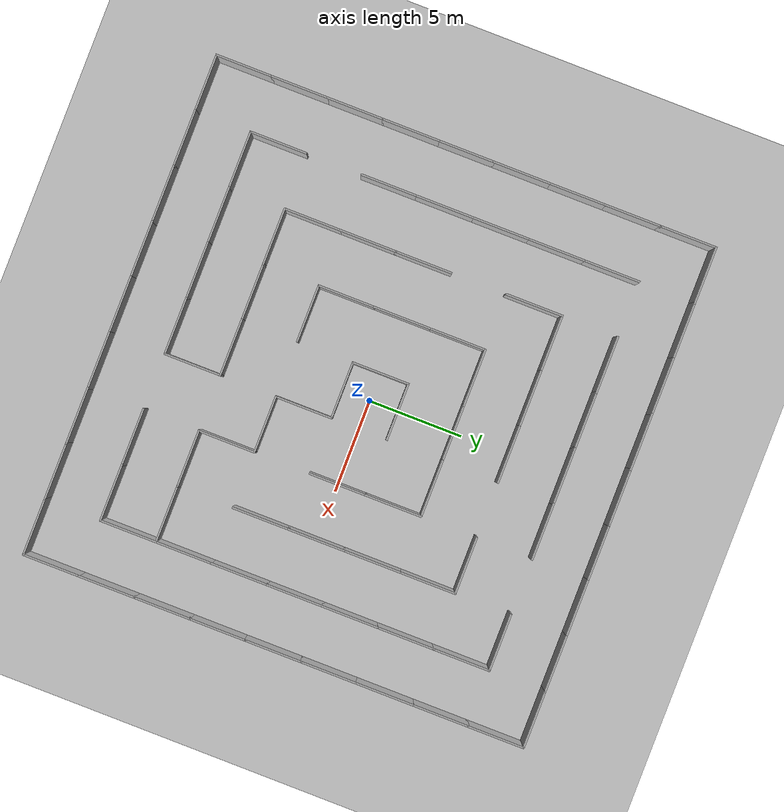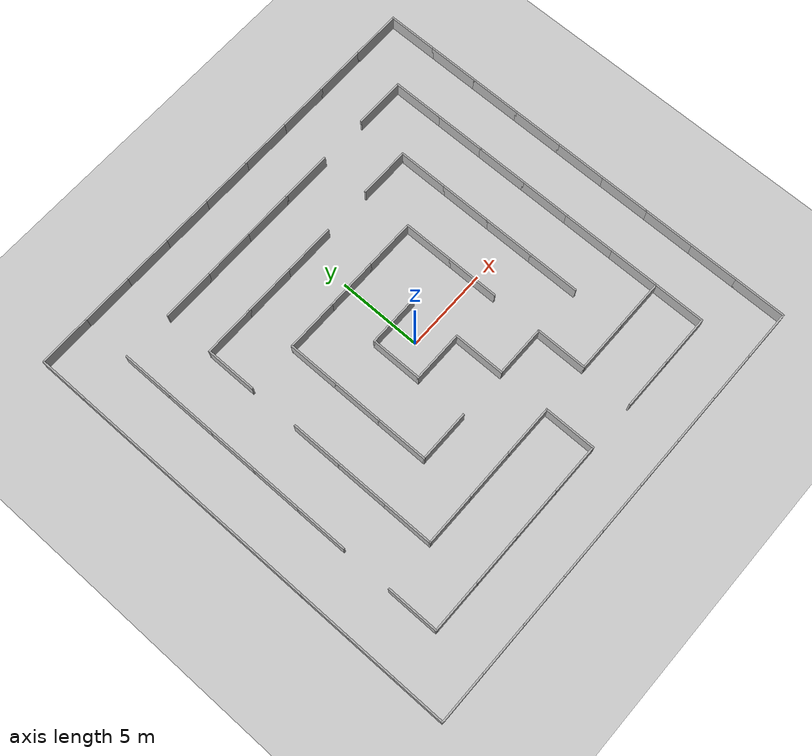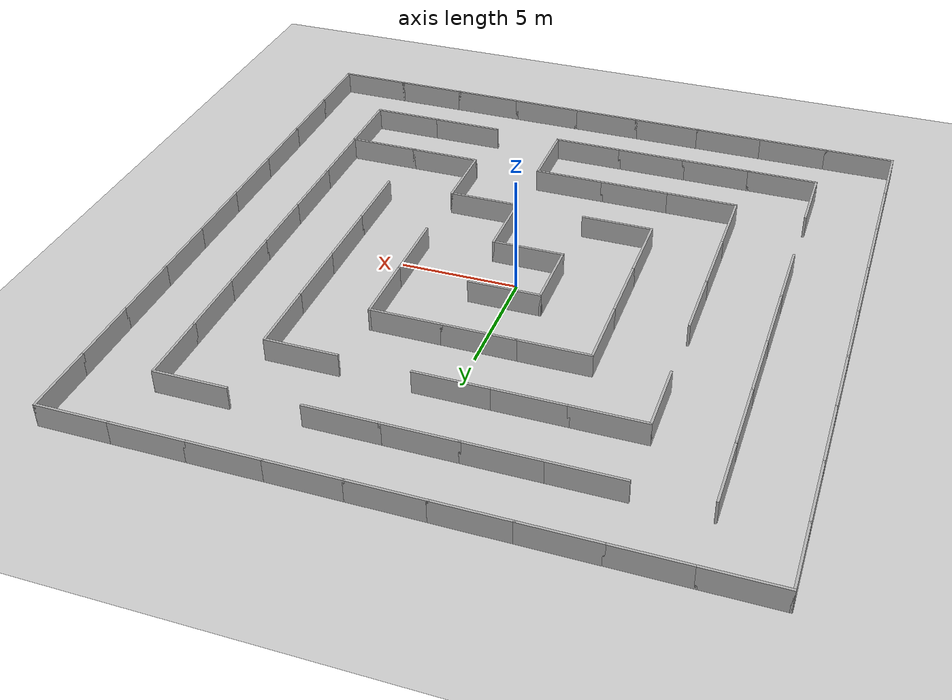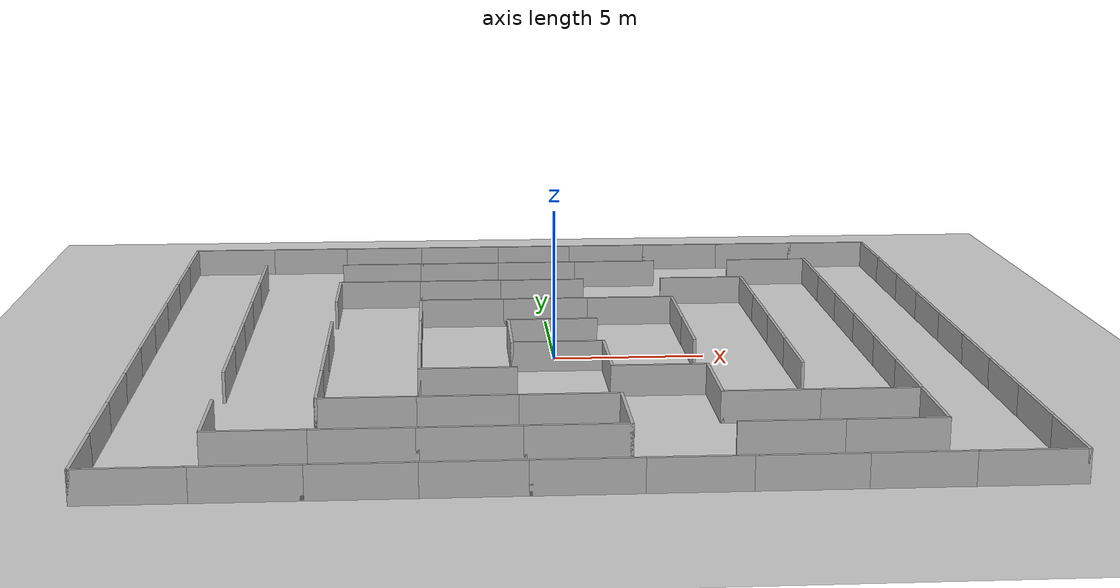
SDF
<?xml version="1.0" ?>
<sdf version="1.8">
  <world name="maze_world">
    <plugin name="ignition::gazebo::systems::Physics" filename="libignition-gazebo-physics-system.so"/>
    <plugin name="ignition::gazebo::systems::SceneBroadcaster" filename="libignition-gazebo-scene-broadcaster-system.so"/>
    <plugin name="ignition::gazebo::systems::UserCommands" filename="libignition-gazebo-user-commands-system.so"/>
    <plugin name="ignition::gazebo::systems::Sensors" filename="libignition-gazebo-sensors-system.so">
      <render_engine>ogre</render_engine>
    </plugin>
    <light type="directional" name="sun">
      <cast_shadows>true</cast_shadows>
      <pose>0 0 10 0 0 0</pose>
      <diffuse>0.8 0.8 0.8 1</diffuse>
      <specular>0.2 0.2 0.2 1</specular>
      <direction>-0.5 0.1 -0.9</direction>
    </light>
    <model name="ground_plane">
      <static>true</static>
      <link name="link">
        <pose>0 0 0 0 0 0</pose>
        <collision name="collision">
          <geometry>
            <plane>
              <normal>0 0 1</normal>
              <size>100 100</size>
            </plane>
          </geometry>
        </collision>
        <visual name="visual">
          <geometry>
            <plane>
              <normal>0 0 1</normal>
              <size>100 100</size>
            </plane>
          </geometry>
          <material>
            <ambient>0.8 0.8 0.8 1</ambient>
            <diffuse>0.8 0.8 0.8 1</diffuse>
          </material>
        </visual>
      </link>
    </model>
    <model name="wall_1">
      <static>true</static>
      <pose>0.0 -1.5 0.5 0 0 0</pose>
      <link name="link">
        <collision name="collision">
          <geometry>
            <box>
              <size>3.1 0.1 1.0</size>
            </box>
          </geometry>
        </collision>
        <visual name="visual">
          <geometry>
            <box>
              <size>3.1 0.1 1.0</size>
            </box>
          </geometry>
          <material>
            <ambient>0.7 0.7 0.7 1</ambient>
          </material>
        </visual>
      </link>
    </model>
    <model name="wall_2">
      <static>true</static>
      <pose>1.5 -3.0 0.5 0 0 0</pose>
      <link name="link">
        <collision name="collision">
          <geometry>
            <box>
              <size>0.1 3.1 1.0</size>
            </box>
          </geometry>
        </collision>
        <visual name="visual">
          <geometry>
            <box>
              <size>0.1 3.1 1.0</size>
            </box>
          </geometry>
          <material>
            <ambient>0.7 0.7 0.7 1</ambient>
          </material>
        </visual>
      </link>
    </model>
    <model name="wall_3">
      <static>true</static>
      <pose>0.0 1.5 0.5 0 0 0</pose>
      <link name="link">
        <collision name="collision">
          <geometry>
            <box>
              <size>3.1 0.1 1.0</size>
            </box>
          </geometry>
        </collision>
        <visual name="visual">
          <geometry>
            <box>
              <size>3.1 0.1 1.0</size>
            </box>
          </geometry>
          <material>
            <ambient>0.7 0.7 0.7 1</ambient>
          </material>
        </visual>
      </link>
    </model>
    <model name="wall_4">
      <static>true</static>
      <pose>-1.5 0.0 0.5 0 0 0</pose>
      <link name="link">
        <collision name="collision">
          <geometry>
            <box>
              <size>0.1 3.1 1.0</size>
            </box>
          </geometry>
        </collision>
        <visual name="visual">
          <geometry>
            <box>
              <size>0.1 3.1 1.0</size>
            </box>
          </geometry>
          <material>
            <ambient>0.7 0.7 0.7 1</ambient>
          </material>
        </visual>
      </link>
    </model>
    <model name="wall_5">
      <static>true</static>
      <pose>-3.0 -4.5 0.5 0 0 0</pose>
      <link name="link">
        <collision name="collision">
          <geometry>
            <box>
              <size>3.1 0.1 1.0</size>
            </box>
          </geometry>
        </collision>
        <visual name="visual">
          <geometry>
            <box>
              <size>3.1 0.1 1.0</size>
            </box>
          </geometry>
          <material>
            <ambient>0.7 0.7 0.7 1</ambient>
          </material>
        </visual>
      </link>
    </model>
    <model name="wall_7">
      <static>true</static>
      <pose>3.0 -4.5 0.5 0 0 0</pose>
      <link name="link">
        <collision name="collision">
          <geometry>
            <box>
              <size>3.1 0.1 1.0</size>
            </box>
          </geometry>
        </collision>
        <visual name="visual">
          <geometry>
            <box>
              <size>3.1 0.1 1.0</size>
            </box>
          </geometry>
          <material>
            <ambient>0.7 0.7 0.7 1</ambient>
          </material>
        </visual>
      </link>
    </model>
    <model name="wall_8">
      <static>true</static>
      <pose>4.5 -6.0 0.5 0 0 0</pose>
      <link name="link">
        <collision name="collision">
          <geometry>
            <box>
              <size>0.1 3.1 1.0</size>
            </box>
          </geometry>
        </collision>
        <visual name="visual">
          <geometry>
            <box>
              <size>0.1 3.1 1.0</size>
            </box>
          </geometry>
          <material>
            <ambient>0.7 0.7 0.7 1</ambient>
          </material>
        </visual>
      </link>
    </model>
    <model name="wall_9">
      <static>true</static>
      <pose>4.5 0.0 0.5 0 0 0</pose>
      <link name="link">
        <collision name="collision">
          <geometry>
            <box>
              <size>0.1 3.1 1.0</size>
            </box>
          </geometry>
        </collision>
        <visual name="visual">
          <geometry>
            <box>
              <size>0.1 3.1 1.0</size>
            </box>
          </geometry>
          <material>
            <ambient>0.7 0.7 0.7 1</ambient>
          </material>
        </visual>
      </link>
    </model>
    <model name="wall_10">
      <static>true</static>
      <pose>4.5 3.0 0.5 0 0 0</pose>
      <link name="link">
        <collision name="collision">
          <geometry>
            <box>
              <size>0.1 3.1 1.0</size>
            </box>
          </geometry>
        </collision>
        <visual name="visual">
          <geometry>
            <box>
              <size>0.1 3.1 1.0</size>
            </box>
          </geometry>
          <material>
            <ambient>0.7 0.7 0.7 1</ambient>
          </material>
        </visual>
      </link>
    </model>
    <model name="wall_11">
      <static>true</static>
      <pose>3.0 4.5 0.5 0 0 0</pose>
      <link name="link">
        <collision name="collision">
          <geometry>
            <box>
              <size>3.1 0.1 1.0</size>
            </box>
          </geometry>
        </collision>
        <visual name="visual">
          <geometry>
            <box>
              <size>3.1 0.1 1.0</size>
            </box>
          </geometry>
          <material>
            <ambient>0.7 0.7 0.7 1</ambient>
          </material>
        </visual>
      </link>
    </model>
    <model name="wall_12">
      <static>true</static>
      <pose>0.0 4.5 0.5 0 0 0</pose>
      <link name="link">
        <collision name="collision">
          <geometry>
            <box>
              <size>3.1 0.1 1.0</size>
            </box>
          </geometry>
        </collision>
        <visual name="visual">
          <geometry>
            <box>
              <size>3.1 0.1 1.0</size>
            </box>
          </geometry>
          <material>
            <ambient>0.7 0.7 0.7 1</ambient>
          </material>
        </visual>
      </link>
    </model>
    <model name="wall_13">
      <static>true</static>
      <pose>-3.0 4.5 0.5 0 0 0</pose>
      <link name="link">
        <collision name="collision">
          <geometry>
            <box>
              <size>3.1 0.1 1.0</size>
            </box>
          </geometry>
        </collision>
        <visual name="visual">
          <geometry>
            <box>
              <size>3.1 0.1 1.0</size>
            </box>
          </geometry>
          <material>
            <ambient>0.7 0.7 0.7 1</ambient>
          </material>
        </visual>
      </link>
    </model>
    <model name="wall_14">
      <static>true</static>
      <pose>-4.5 3.0 0.5 0 0 0</pose>
      <link name="link">
        <collision name="collision">
          <geometry>
            <box>
              <size>0.1 3.1 1.0</size>
            </box>
          </geometry>
        </collision>
        <visual name="visual">
          <geometry>
            <box>
              <size>0.1 3.1 1.0</size>
            </box>
          </geometry>
          <material>
            <ambient>0.7 0.7 0.7 1</ambient>
          </material>
        </visual>
      </link>
    </model>
    <model name="wall_15">
      <static>true</static>
      <pose>-4.5 0.0 0.5 0 0 0</pose>
      <link name="link">
        <collision name="collision">
          <geometry>
            <box>
              <size>0.1 3.1 1.0</size>
            </box>
          </geometry>
        </collision>
        <visual name="visual">
          <geometry>
            <box>
              <size>0.1 3.1 1.0</size>
            </box>
          </geometry>
          <material>
            <ambient>0.7 0.7 0.7 1</ambient>
          </material>
        </visual>
      </link>
    </model>
    <model name="wall_16">
      <static>true</static>
      <pose>-4.5 -3.0 0.5 0 0 0</pose>
      <link name="link">
        <collision name="collision">
          <geometry>
            <box>
              <size>0.1 3.1 1.0</size>
            </box>
          </geometry>
        </collision>
        <visual name="visual">
          <geometry>
            <box>
              <size>0.1 3.1 1.0</size>
            </box>
          </geometry>
          <material>
            <ambient>0.7 0.7 0.7 1</ambient>
          </material>
        </visual>
      </link>
    </model>
    <model name="wall_17">
      <static>true</static>
      <pose>-6.0 -7.5 0.5 0 0 0</pose>
      <link name="link">
        <collision name="collision">
          <geometry>
            <box>
              <size>3.1 0.1 1.0</size>
            </box>
          </geometry>
        </collision>
        <visual name="visual">
          <geometry>
            <box>
              <size>3.1 0.1 1.0</size>
            </box>
          </geometry>
          <material>
            <ambient>0.7 0.7 0.7 1</ambient>
          </material>
        </visual>
      </link>
    </model>
    <model name="wall_18">
      <static>true</static>
      <pose>-3.0 -7.5 0.5 0 0 0</pose>
      <link name="link">
        <collision name="collision">
          <geometry>
            <box>
              <size>3.1 0.1 1.0</size>
            </box>
          </geometry>
        </collision>
        <visual name="visual">
          <geometry>
            <box>
              <size>3.1 0.1 1.0</size>
            </box>
          </geometry>
          <material>
            <ambient>0.7 0.7 0.7 1</ambient>
          </material>
        </visual>
      </link>
    </model>
    <model name="wall_19">
      <static>true</static>
      <pose>0.0 -7.5 0.5 0 0 0</pose>
      <link name="link">
        <collision name="collision">
          <geometry>
            <box>
              <size>3.1 0.1 1.0</size>
            </box>
          </geometry>
        </collision>
        <visual name="visual">
          <geometry>
            <box>
              <size>3.1 0.1 1.0</size>
            </box>
          </geometry>
          <material>
            <ambient>0.7 0.7 0.7 1</ambient>
          </material>
        </visual>
      </link>
    </model>
    <model name="wall_20">
      <static>true</static>
      <pose>1.5 -9.0 0.5 0 0 0</pose>
      <link name="link">
        <collision name="collision">
          <geometry>
            <box>
              <size>0.1 3.1 1.0</size>
            </box>
          </geometry>
        </collision>
        <visual name="visual">
          <geometry>
            <box>
              <size>0.1 3.1 1.0</size>
            </box>
          </geometry>
          <material>
            <ambient>0.7 0.7 0.7 1</ambient>
          </material>
        </visual>
      </link>
    </model>
    <model name="wall_21">
      <static>true</static>
      <pose>6.0 -7.5 0.5 0 0 0</pose>
      <link name="link">
        <collision name="collision">
          <geometry>
            <box>
              <size>3.1 0.1 1.0</size>
            </box>
          </geometry>
        </collision>
        <visual name="visual">
          <geometry>
            <box>
              <size>3.1 0.1 1.0</size>
            </box>
          </geometry>
          <material>
            <ambient>0.7 0.7 0.7 1</ambient>
          </material>
        </visual>
      </link>
    </model>
    <model name="wall_22">
      <static>true</static>
      <pose>9.0 -7.5 0.5 0 0 0</pose>
      <link name="link">
        <collision name="collision">
          <geometry>
            <box>
              <size>3.1 0.1 1.0</size>
            </box>
          </geometry>
        </collision>
        <visual name="visual">
          <geometry>
            <box>
              <size>3.1 0.1 1.0</size>
            </box>
          </geometry>
          <material>
            <ambient>0.7 0.7 0.7 1</ambient>
          </material>
        </visual>
      </link>
    </model>
    <model name="wall_23">
      <static>true</static>
      <pose>7.5 -3.0 0.5 0 0 0</pose>
      <link name="link">
        <collision name="collision">
          <geometry>
            <box>
              <size>0.1 3.1 1.0</size>
            </box>
          </geometry>
        </collision>
        <visual name="visual">
          <geometry>
            <box>
              <size>0.1 3.1 1.0</size>
            </box>
          </geometry>
          <material>
            <ambient>0.7 0.7 0.7 1</ambient>
          </material>
        </visual>
      </link>
    </model>
    <model name="wall_24">
      <static>true</static>
      <pose>7.5 0.0 0.5 0 0 0</pose>
      <link name="link">
        <collision name="collision">
          <geometry>
            <box>
              <size>0.1 3.1 1.0</size>
            </box>
          </geometry>
        </collision>
        <visual name="visual">
          <geometry>
            <box>
              <size>0.1 3.1 1.0</size>
            </box>
          </geometry>
          <material>
            <ambient>0.7 0.7 0.7 1</ambient>
          </material>
        </visual>
      </link>
    </model>
    <model name="wall_25">
      <static>true</static>
      <pose>7.5 3.0 0.5 0 0 0</pose>
      <link name="link">
        <collision name="collision">
          <geometry>
            <box>
              <size>0.1 3.1 1.0</size>
            </box>
          </geometry>
        </collision>
        <visual name="visual">
          <geometry>
            <box>
              <size>0.1 3.1 1.0</size>
            </box>
          </geometry>
          <material>
            <ambient>0.7 0.7 0.7 1</ambient>
          </material>
        </visual>
      </link>
    </model>
    <model name="wall_26">
      <static>true</static>
      <pose>7.5 6.0 0.5 0 0 0</pose>
      <link name="link">
        <collision name="collision">
          <geometry>
            <box>
              <size>0.1 3.1 1.0</size>
            </box>
          </geometry>
        </collision>
        <visual name="visual">
          <geometry>
            <box>
              <size>0.1 3.1 1.0</size>
            </box>
          </geometry>
          <material>
            <ambient>0.7 0.7 0.7 1</ambient>
          </material>
        </visual>
      </link>
    </model>
    <model name="wall_27">
      <static>true</static>
      <pose>6.0 7.5 0.5 0 0 0</pose>
      <link name="link">
        <collision name="collision">
          <geometry>
            <box>
              <size>3.1 0.1 1.0</size>
            </box>
          </geometry>
        </collision>
        <visual name="visual">
          <geometry>
            <box>
              <size>3.1 0.1 1.0</size>
            </box>
          </geometry>
          <material>
            <ambient>0.7 0.7 0.7 1</ambient>
          </material>
        </visual>
      </link>
    </model>
    <model name="wall_29">
      <static>true</static>
      <pose>0.0 7.5 0.5 0 0 0</pose>
      <link name="link">
        <collision name="collision">
          <geometry>
            <box>
              <size>3.1 0.1 1.0</size>
            </box>
          </geometry>
        </collision>
        <visual name="visual">
          <geometry>
            <box>
              <size>3.1 0.1 1.0</size>
            </box>
          </geometry>
          <material>
            <ambient>0.7 0.7 0.7 1</ambient>
          </material>
        </visual>
      </link>
    </model>
    <model name="wall_30">
      <static>true</static>
      <pose>-3.0 7.5 0.5 0 0 0</pose>
      <link name="link">
        <collision name="collision">
          <geometry>
            <box>
              <size>3.1 0.1 1.0</size>
            </box>
          </geometry>
        </collision>
        <visual name="visual">
          <geometry>
            <box>
              <size>3.1 0.1 1.0</size>
            </box>
          </geometry>
          <material>
            <ambient>0.7 0.7 0.7 1</ambient>
          </material>
        </visual>
      </link>
    </model>
    <model name="wall_31">
      <static>true</static>
      <pose>-6.0 7.5 0.5 0 0 0</pose>
      <link name="link">
        <collision name="collision">
          <geometry>
            <box>
              <size>3.1 0.1 1.0</size>
            </box>
          </geometry>
        </collision>
        <visual name="visual">
          <geometry>
            <box>
              <size>3.1 0.1 1.0</size>
            </box>
          </geometry>
          <material>
            <ambient>0.7 0.7 0.7 1</ambient>
          </material>
        </visual>
      </link>
    </model>
    <model name="wall_32">
      <static>true</static>
      <pose>-7.5 6.0 0.5 0 0 0</pose>
      <link name="link">
        <collision name="collision">
          <geometry>
            <box>
              <size>0.1 3.1 1.0</size>
            </box>
          </geometry>
        </collision>
        <visual name="visual">
          <geometry>
            <box>
              <size>0.1 3.1 1.0</size>
            </box>
          </geometry>
          <material>
            <ambient>0.7 0.7 0.7 1</ambient>
          </material>
        </visual>
      </link>
    </model>
    <model name="wall_34">
      <static>true</static>
      <pose>-7.5 0.0 0.5 0 0 0</pose>
      <link name="link">
        <collision name="collision">
          <geometry>
            <box>
              <size>0.1 3.1 1.0</size>
            </box>
          </geometry>
        </collision>
        <visual name="visual">
          <geometry>
            <box>
              <size>0.1 3.1 1.0</size>
            </box>
          </geometry>
          <material>
            <ambient>0.7 0.7 0.7 1</ambient>
          </material>
        </visual>
      </link>
    </model>
    <model name="wall_35">
      <static>true</static>
      <pose>-7.5 -3.0 0.5 0 0 0</pose>
      <link name="link">
        <collision name="collision">
          <geometry>
            <box>
              <size>0.1 3.1 1.0</size>
            </box>
          </geometry>
        </collision>
        <visual name="visual">
          <geometry>
            <box>
              <size>0.1 3.1 1.0</size>
            </box>
          </geometry>
          <material>
            <ambient>0.7 0.7 0.7 1</ambient>
          </material>
        </visual>
      </link>
    </model>
    <model name="wall_36">
      <static>true</static>
      <pose>-7.5 -6.0 0.5 0 0 0</pose>
      <link name="link">
        <collision name="collision">
          <geometry>
            <box>
              <size>0.1 3.1 1.0</size>
            </box>
          </geometry>
        </collision>
        <visual name="visual">
          <geometry>
            <box>
              <size>0.1 3.1 1.0</size>
            </box>
          </geometry>
          <material>
            <ambient>0.7 0.7 0.7 1</ambient>
          </material>
        </visual>
      </link>
    </model>
    <model name="wall_37">
      <static>true</static>
      <pose>-9.0 -10.5 0.5 0 0 0</pose>
      <link name="link">
        <collision name="collision">
          <geometry>
            <box>
              <size>3.1 0.1 1.0</size>
            </box>
          </geometry>
        </collision>
        <visual name="visual">
          <geometry>
            <box>
              <size>3.1 0.1 1.0</size>
            </box>
          </geometry>
          <material>
            <ambient>0.7 0.7 0.7 1</ambient>
          </material>
        </visual>
      </link>
    </model>
    <model name="wall_38">
      <static>true</static>
      <pose>-6.0 -10.5 0.5 0 0 0</pose>
      <link name="link">
        <collision name="collision">
          <geometry>
            <box>
              <size>3.1 0.1 1.0</size>
            </box>
          </geometry>
        </collision>
        <visual name="visual">
          <geometry>
            <box>
              <size>3.1 0.1 1.0</size>
            </box>
          </geometry>
          <material>
            <ambient>0.7 0.7 0.7 1</ambient>
          </material>
        </visual>
      </link>
    </model>
    <model name="wall_39">
      <static>true</static>
      <pose>-3.0 -10.5 0.5 0 0 0</pose>
      <link name="link">
        <collision name="collision">
          <geometry>
            <box>
              <size>3.1 0.1 1.0</size>
            </box>
          </geometry>
        </collision>
        <visual name="visual">
          <geometry>
            <box>
              <size>3.1 0.1 1.0</size>
            </box>
          </geometry>
          <material>
            <ambient>0.7 0.7 0.7 1</ambient>
          </material>
        </visual>
      </link>
    </model>
    <model name="wall_40">
      <static>true</static>
      <pose>0.0 -10.5 0.5 0 0 0</pose>
      <link name="link">
        <collision name="collision">
          <geometry>
            <box>
              <size>3.1 0.1 1.0</size>
            </box>
          </geometry>
        </collision>
        <visual name="visual">
          <geometry>
            <box>
              <size>3.1 0.1 1.0</size>
            </box>
          </geometry>
          <material>
            <ambient>0.7 0.7 0.7 1</ambient>
          </material>
        </visual>
      </link>
    </model>
    <model name="wall_42">
      <static>true</static>
      <pose>6.0 -10.5 0.5 0 0 0</pose>
      <link name="link">
        <collision name="collision">
          <geometry>
            <box>
              <size>3.1 0.1 1.0</size>
            </box>
          </geometry>
        </collision>
        <visual name="visual">
          <geometry>
            <box>
              <size>3.1 0.1 1.0</size>
            </box>
          </geometry>
          <material>
            <ambient>0.7 0.7 0.7 1</ambient>
          </material>
        </visual>
      </link>
    </model>
    <model name="wall_43">
      <static>true</static>
      <pose>9.0 -10.5 0.5 0 0 0</pose>
      <link name="link">
        <collision name="collision">
          <geometry>
            <box>
              <size>3.1 0.1 1.0</size>
            </box>
          </geometry>
        </collision>
        <visual name="visual">
          <geometry>
            <box>
              <size>3.1 0.1 1.0</size>
            </box>
          </geometry>
          <material>
            <ambient>0.7 0.7 0.7 1</ambient>
          </material>
        </visual>
      </link>
    </model>
    <model name="wall_44">
      <static>true</static>
      <pose>10.5 -9.0 0.5 0 0 0</pose>
      <link name="link">
        <collision name="collision">
          <geometry>
            <box>
              <size>0.1 3.1 1.0</size>
            </box>
          </geometry>
        </collision>
        <visual name="visual">
          <geometry>
            <box>
              <size>0.1 3.1 1.0</size>
            </box>
          </geometry>
          <material>
            <ambient>0.7 0.7 0.7 1</ambient>
          </material>
        </visual>
      </link>
    </model>
    <model name="wall_45">
      <static>true</static>
      <pose>10.5 -6.0 0.5 0 0 0</pose>
      <link name="link">
        <collision name="collision">
          <geometry>
            <box>
              <size>0.1 3.1 1.0</size>
            </box>
          </geometry>
        </collision>
        <visual name="visual">
          <geometry>
            <box>
              <size>0.1 3.1 1.0</size>
            </box>
          </geometry>
          <material>
            <ambient>0.7 0.7 0.7 1</ambient>
          </material>
        </visual>
      </link>
    </model>
    <model name="wall_46">
      <static>true</static>
      <pose>10.5 -3.0 0.5 0 0 0</pose>
      <link name="link">
        <collision name="collision">
          <geometry>
            <box>
              <size>0.1 3.1 1.0</size>
            </box>
          </geometry>
        </collision>
        <visual name="visual">
          <geometry>
            <box>
              <size>0.1 3.1 1.0</size>
            </box>
          </geometry>
          <material>
            <ambient>0.7 0.7 0.7 1</ambient>
          </material>
        </visual>
      </link>
    </model>
    <model name="wall_47">
      <static>true</static>
      <pose>10.5 0.0 0.5 0 0 0</pose>
      <link name="link">
        <collision name="collision">
          <geometry>
            <box>
              <size>0.1 3.1 1.0</size>
            </box>
          </geometry>
        </collision>
        <visual name="visual">
          <geometry>
            <box>
              <size>0.1 3.1 1.0</size>
            </box>
          </geometry>
          <material>
            <ambient>0.7 0.7 0.7 1</ambient>
          </material>
        </visual>
      </link>
    </model>
    <model name="wall_48">
      <static>true</static>
      <pose>10.5 3.0 0.5 0 0 0</pose>
      <link name="link">
        <collision name="collision">
          <geometry>
            <box>
              <size>0.1 3.1 1.0</size>
            </box>
          </geometry>
        </collision>
        <visual name="visual">
          <geometry>
            <box>
              <size>0.1 3.1 1.0</size>
            </box>
          </geometry>
          <material>
            <ambient>0.7 0.7 0.7 1</ambient>
          </material>
        </visual>
      </link>
    </model>
    <model name="wall_49">
      <static>true</static>
      <pose>10.5 6.0 0.5 0 0 0</pose>
      <link name="link">
        <collision name="collision">
          <geometry>
            <box>
              <size>0.1 3.1 1.0</size>
            </box>
          </geometry>
        </collision>
        <visual name="visual">
          <geometry>
            <box>
              <size>0.1 3.1 1.0</size>
            </box>
          </geometry>
          <material>
            <ambient>0.7 0.7 0.7 1</ambient>
          </material>
        </visual>
      </link>
    </model>
    <model name="wall_50">
      <static>true</static>
      <pose>10.5 9.0 0.5 0 0 0</pose>
      <link name="link">
        <collision name="collision">
          <geometry>
            <box>
              <size>0.1 3.1 1.0</size>
            </box>
          </geometry>
        </collision>
        <visual name="visual">
          <geometry>
            <box>
              <size>0.1 3.1 1.0</size>
            </box>
          </geometry>
          <material>
            <ambient>0.7 0.7 0.7 1</ambient>
          </material>
        </visual>
      </link>
    </model>
    <model name="wall_51">
      <static>true</static>
      <pose>9.0 10.5 0.5 0 0 0</pose>
      <link name="link">
        <collision name="collision">
          <geometry>
            <box>
              <size>3.1 0.1 1.0</size>
            </box>
          </geometry>
        </collision>
        <visual name="visual">
          <geometry>
            <box>
              <size>3.1 0.1 1.0</size>
            </box>
          </geometry>
          <material>
            <ambient>0.7 0.7 0.7 1</ambient>
          </material>
        </visual>
      </link>
    </model>
    <model name="wall_53">
      <static>true</static>
      <pose>3.0 10.5 0.5 0 0 0</pose>
      <link name="link">
        <collision name="collision">
          <geometry>
            <box>
              <size>3.1 0.1 1.0</size>
            </box>
          </geometry>
        </collision>
        <visual name="visual">
          <geometry>
            <box>
              <size>3.1 0.1 1.0</size>
            </box>
          </geometry>
          <material>
            <ambient>0.7 0.7 0.7 1</ambient>
          </material>
        </visual>
      </link>
    </model>
    <model name="wall_54">
      <static>true</static>
      <pose>0.0 10.5 0.5 0 0 0</pose>
      <link name="link">
        <collision name="collision">
          <geometry>
            <box>
              <size>3.1 0.1 1.0</size>
            </box>
          </geometry>
        </collision>
        <visual name="visual">
          <geometry>
            <box>
              <size>3.1 0.1 1.0</size>
            </box>
          </geometry>
          <material>
            <ambient>0.7 0.7 0.7 1</ambient>
          </material>
        </visual>
      </link>
    </model>
    <model name="wall_55">
      <static>true</static>
      <pose>-3.0 10.5 0.5 0 0 0</pose>
      <link name="link">
        <collision name="collision">
          <geometry>
            <box>
              <size>3.1 0.1 1.0</size>
            </box>
          </geometry>
        </collision>
        <visual name="visual">
          <geometry>
            <box>
              <size>3.1 0.1 1.0</size>
            </box>
          </geometry>
          <material>
            <ambient>0.7 0.7 0.7 1</ambient>
          </material>
        </visual>
      </link>
    </model>
    <model name="wall_56">
      <static>true</static>
      <pose>-6.0 10.5 0.5 0 0 0</pose>
      <link name="link">
        <collision name="collision">
          <geometry>
            <box>
              <size>3.1 0.1 1.0</size>
            </box>
          </geometry>
        </collision>
        <visual name="visual">
          <geometry>
            <box>
              <size>3.1 0.1 1.0</size>
            </box>
          </geometry>
          <material>
            <ambient>0.7 0.7 0.7 1</ambient>
          </material>
        </visual>
      </link>
    </model>
    <model name="wall_58">
      <static>true</static>
      <pose>-10.5 9.0 0.5 0 0 0</pose>
      <link name="link">
        <collision name="collision">
          <geometry>
            <box>
              <size>0.1 3.1 1.0</size>
            </box>
          </geometry>
        </collision>
        <visual name="visual">
          <geometry>
            <box>
              <size>0.1 3.1 1.0</size>
            </box>
          </geometry>
          <material>
            <ambient>0.7 0.7 0.7 1</ambient>
          </material>
        </visual>
      </link>
    </model>
    <model name="wall_59">
      <static>true</static>
      <pose>-10.5 6.0 0.5 0 0 0</pose>
      <link name="link">
        <collision name="collision">
          <geometry>
            <box>
              <size>0.1 3.1 1.0</size>
            </box>
          </geometry>
        </collision>
        <visual name="visual">
          <geometry>
            <box>
              <size>0.1 3.1 1.0</size>
            </box>
          </geometry>
          <material>
            <ambient>0.7 0.7 0.7 1</ambient>
          </material>
        </visual>
      </link>
    </model>
    <model name="wall_60">
      <static>true</static>
      <pose>-10.5 3.0 0.5 0 0 0</pose>
      <link name="link">
        <collision name="collision">
          <geometry>
            <box>
              <size>0.1 3.1 1.0</size>
            </box>
          </geometry>
        </collision>
        <visual name="visual">
          <geometry>
            <box>
              <size>0.1 3.1 1.0</size>
            </box>
          </geometry>
          <material>
            <ambient>0.7 0.7 0.7 1</ambient>
          </material>
        </visual>
      </link>
    </model>
    <model name="wall_61">
      <static>true</static>
      <pose>-10.5 0.0 0.5 0 0 0</pose>
      <link name="link">
        <collision name="collision">
          <geometry>
            <box>
              <size>0.1 3.1 1.0</size>
            </box>
          </geometry>
        </collision>
        <visual name="visual">
          <geometry>
            <box>
              <size>0.1 3.1 1.0</size>
            </box>
          </geometry>
          <material>
            <ambient>0.7 0.7 0.7 1</ambient>
          </material>
        </visual>
      </link>
    </model>
    <model name="wall_62">
      <static>true</static>
      <pose>-10.5 -3.0 0.5 0 0 0</pose>
      <link name="link">
        <collision name="collision">
          <geometry>
            <box>
              <size>0.1 3.1 1.0</size>
            </box>
          </geometry>
        </collision>
        <visual name="visual">
          <geometry>
            <box>
              <size>0.1 3.1 1.0</size>
            </box>
          </geometry>
          <material>
            <ambient>0.7 0.7 0.7 1</ambient>
          </material>
        </visual>
      </link>
    </model>
    <model name="wall_64">
      <static>true</static>
      <pose>-10.5 -9.0 0.5 0 0 0</pose>
      <link name="link">
        <collision name="collision">
          <geometry>
            <box>
              <size>0.1 3.1 1.0</size>
            </box>
          </geometry>
        </collision>
        <visual name="visual">
          <geometry>
            <box>
              <size>0.1 3.1 1.0</size>
            </box>
          </geometry>
          <material>
            <ambient>0.7 0.7 0.7 1</ambient>
          </material>
        </visual>
      </link>
    </model>
    <model name="wall_65">
      <static>true</static>
      <pose>-12.0 -13.5 0.5 0 0 0</pose>
      <link name="link">
        <collision name="collision">
          <geometry>
            <box>
              <size>3.1 0.1 1.0</size>
            </box>
          </geometry>
        </collision>
        <visual name="visual">
          <geometry>
            <box>
              <size>3.1 0.1 1.0</size>
            </box>
          </geometry>
          <material>
            <ambient>0.7 0.7 0.7 1</ambient>
          </material>
        </visual>
      </link>
    </model>
    <model name="wall_66">
      <static>true</static>
      <pose>-9.0 -13.5 0.5 0 0 0</pose>
      <link name="link">
        <collision name="collision">
          <geometry>
            <box>
              <size>3.1 0.1 1.0</size>
            </box>
          </geometry>
        </collision>
        <visual name="visual">
          <geometry>
            <box>
              <size>3.1 0.1 1.0</size>
            </box>
          </geometry>
          <material>
            <ambient>0.7 0.7 0.7 1</ambient>
          </material>
        </visual>
      </link>
    </model>
    <model name="wall_67">
      <static>true</static>
      <pose>-6.0 -13.5 0.5 0 0 0</pose>
      <link name="link">
        <collision name="collision">
          <geometry>
            <box>
              <size>3.1 0.1 1.0</size>
            </box>
          </geometry>
        </collision>
        <visual name="visual">
          <geometry>
            <box>
              <size>3.1 0.1 1.0</size>
            </box>
          </geometry>
          <material>
            <ambient>0.7 0.7 0.7 1</ambient>
          </material>
        </visual>
      </link>
    </model>
    <model name="wall_68">
      <static>true</static>
      <pose>-3.0 -13.5 0.5 0 0 0</pose>
      <link name="link">
        <collision name="collision">
          <geometry>
            <box>
              <size>3.1 0.1 1.0</size>
            </box>
          </geometry>
        </collision>
        <visual name="visual">
          <geometry>
            <box>
              <size>3.1 0.1 1.0</size>
            </box>
          </geometry>
          <material>
            <ambient>0.7 0.7 0.7 1</ambient>
          </material>
        </visual>
      </link>
    </model>
    <model name="wall_69">
      <static>true</static>
      <pose>0.0 -13.5 0.5 0 0 0</pose>
      <link name="link">
        <collision name="collision">
          <geometry>
            <box>
              <size>3.1 0.1 1.0</size>
            </box>
          </geometry>
        </collision>
        <visual name="visual">
          <geometry>
            <box>
              <size>3.1 0.1 1.0</size>
            </box>
          </geometry>
          <material>
            <ambient>0.7 0.7 0.7 1</ambient>
          </material>
        </visual>
      </link>
    </model>
    <model name="wall_70">
      <static>true</static>
      <pose>3.0 -13.5 0.5 0 0 0</pose>
      <link name="link">
        <collision name="collision">
          <geometry>
            <box>
              <size>3.1 0.1 1.0</size>
            </box>
          </geometry>
        </collision>
        <visual name="visual">
          <geometry>
            <box>
              <size>3.1 0.1 1.0</size>
            </box>
          </geometry>
          <material>
            <ambient>0.7 0.7 0.7 1</ambient>
          </material>
        </visual>
      </link>
    </model>
    <model name="wall_71">
      <static>true</static>
      <pose>6.0 -13.5 0.5 0 0 0</pose>
      <link name="link">
        <collision name="collision">
          <geometry>
            <box>
              <size>3.1 0.1 1.0</size>
            </box>
          </geometry>
        </collision>
        <visual name="visual">
          <geometry>
            <box>
              <size>3.1 0.1 1.0</size>
            </box>
          </geometry>
          <material>
            <ambient>0.7 0.7 0.7 1</ambient>
          </material>
        </visual>
      </link>
    </model>
    <model name="wall_72">
      <static>true</static>
      <pose>9.0 -13.5 0.5 0 0 0</pose>
      <link name="link">
        <collision name="collision">
          <geometry>
            <box>
              <size>3.1 0.1 1.0</size>
            </box>
          </geometry>
        </collision>
        <visual name="visual">
          <geometry>
            <box>
              <size>3.1 0.1 1.0</size>
            </box>
          </geometry>
          <material>
            <ambient>0.7 0.7 0.7 1</ambient>
          </material>
        </visual>
      </link>
    </model>
    <model name="wall_73">
      <static>true</static>
      <pose>12.0 -13.5 0.5 0 0 0</pose>
      <link name="link">
        <collision name="collision">
          <geometry>
            <box>
              <size>3.1 0.1 1.0</size>
            </box>
          </geometry>
        </collision>
        <visual name="visual">
          <geometry>
            <box>
              <size>3.1 0.1 1.0</size>
            </box>
          </geometry>
          <material>
            <ambient>0.7 0.7 0.7 1</ambient>
          </material>
        </visual>
      </link>
    </model>
    <model name="wall_74">
      <static>true</static>
      <pose>13.5 -12.0 0.5 0 0 0</pose>
      <link name="link">
        <collision name="collision">
          <geometry>
            <box>
              <size>0.1 3.1 1.0</size>
            </box>
          </geometry>
        </collision>
        <visual name="visual">
          <geometry>
            <box>
              <size>0.1 3.1 1.0</size>
            </box>
          </geometry>
          <material>
            <ambient>0.7 0.7 0.7 1</ambient>
          </material>
        </visual>
      </link>
    </model>
    <model name="wall_75">
      <static>true</static>
      <pose>13.5 -9.0 0.5 0 0 0</pose>
      <link name="link">
        <collision name="collision">
          <geometry>
            <box>
              <size>0.1 3.1 1.0</size>
            </box>
          </geometry>
        </collision>
        <visual name="visual">
          <geometry>
            <box>
              <size>0.1 3.1 1.0</size>
            </box>
          </geometry>
          <material>
            <ambient>0.7 0.7 0.7 1</ambient>
          </material>
        </visual>
      </link>
    </model>
    <model name="wall_76">
      <static>true</static>
      <pose>13.5 -6.0 0.5 0 0 0</pose>
      <link name="link">
        <collision name="collision">
          <geometry>
            <box>
              <size>0.1 3.1 1.0</size>
            </box>
          </geometry>
        </collision>
        <visual name="visual">
          <geometry>
            <box>
              <size>0.1 3.1 1.0</size>
            </box>
          </geometry>
          <material>
            <ambient>0.7 0.7 0.7 1</ambient>
          </material>
        </visual>
      </link>
    </model>
    <model name="wall_77">
      <static>true</static>
      <pose>13.5 -3.0 0.5 0 0 0</pose>
      <link name="link">
        <collision name="collision">
          <geometry>
            <box>
              <size>0.1 3.1 1.0</size>
            </box>
          </geometry>
        </collision>
        <visual name="visual">
          <geometry>
            <box>
              <size>0.1 3.1 1.0</size>
            </box>
          </geometry>
          <material>
            <ambient>0.7 0.7 0.7 1</ambient>
          </material>
        </visual>
      </link>
    </model>
    <model name="wall_78">
      <static>true</static>
      <pose>13.5 0.0 0.5 0 0 0</pose>
      <link name="link">
        <collision name="collision">
          <geometry>
            <box>
              <size>0.1 3.1 1.0</size>
            </box>
          </geometry>
        </collision>
        <visual name="visual">
          <geometry>
            <box>
              <size>0.1 3.1 1.0</size>
            </box>
          </geometry>
          <material>
            <ambient>0.7 0.7 0.7 1</ambient>
          </material>
        </visual>
      </link>
    </model>
    <model name="wall_79">
      <static>true</static>
      <pose>13.5 3.0 0.5 0 0 0</pose>
      <link name="link">
        <collision name="collision">
          <geometry>
            <box>
              <size>0.1 3.1 1.0</size>
            </box>
          </geometry>
        </collision>
        <visual name="visual">
          <geometry>
            <box>
              <size>0.1 3.1 1.0</size>
            </box>
          </geometry>
          <material>
            <ambient>0.7 0.7 0.7 1</ambient>
          </material>
        </visual>
      </link>
    </model>
    <model name="wall_80">
      <static>true</static>
      <pose>13.5 6.0 0.5 0 0 0</pose>
      <link name="link">
        <collision name="collision">
          <geometry>
            <box>
              <size>0.1 3.1 1.0</size>
            </box>
          </geometry>
        </collision>
        <visual name="visual">
          <geometry>
            <box>
              <size>0.1 3.1 1.0</size>
            </box>
          </geometry>
          <material>
            <ambient>0.7 0.7 0.7 1</ambient>
          </material>
        </visual>
      </link>
    </model>
    <model name="wall_81">
      <static>true</static>
      <pose>13.5 9.0 0.5 0 0 0</pose>
      <link name="link">
        <collision name="collision">
          <geometry>
            <box>
              <size>0.1 3.1 1.0</size>
            </box>
          </geometry>
        </collision>
        <visual name="visual">
          <geometry>
            <box>
              <size>0.1 3.1 1.0</size>
            </box>
          </geometry>
          <material>
            <ambient>0.7 0.7 0.7 1</ambient>
          </material>
        </visual>
      </link>
    </model>
    <model name="wall_82">
      <static>true</static>
      <pose>13.5 12.0 0.5 0 0 0</pose>
      <link name="link">
        <collision name="collision">
          <geometry>
            <box>
              <size>0.1 3.1 1.0</size>
            </box>
          </geometry>
        </collision>
        <visual name="visual">
          <geometry>
            <box>
              <size>0.1 3.1 1.0</size>
            </box>
          </geometry>
          <material>
            <ambient>0.7 0.7 0.7 1</ambient>
          </material>
        </visual>
      </link>
    </model>
    <model name="wall_83">
      <static>true</static>
      <pose>12.0 13.5 0.5 0 0 0</pose>
      <link name="link">
        <collision name="collision">
          <geometry>
            <box>
              <size>3.1 0.1 1.0</size>
            </box>
          </geometry>
        </collision>
        <visual name="visual">
          <geometry>
            <box>
              <size>3.1 0.1 1.0</size>
            </box>
          </geometry>
          <material>
            <ambient>0.7 0.7 0.7 1</ambient>
          </material>
        </visual>
      </link>
    </model>
    <model name="wall_84">
      <static>true</static>
      <pose>9.0 13.5 0.5 0 0 0</pose>
      <link name="link">
        <collision name="collision">
          <geometry>
            <box>
              <size>3.1 0.1 1.0</size>
            </box>
          </geometry>
        </collision>
        <visual name="visual">
          <geometry>
            <box>
              <size>3.1 0.1 1.0</size>
            </box>
          </geometry>
          <material>
            <ambient>0.7 0.7 0.7 1</ambient>
          </material>
        </visual>
      </link>
    </model>
    <model name="wall_85">
      <static>true</static>
      <pose>6.0 13.5 0.5 0 0 0</pose>
      <link name="link">
        <collision name="collision">
          <geometry>
            <box>
              <size>3.1 0.1 1.0</size>
            </box>
          </geometry>
        </collision>
        <visual name="visual">
          <geometry>
            <box>
              <size>3.1 0.1 1.0</size>
            </box>
          </geometry>
          <material>
            <ambient>0.7 0.7 0.7 1</ambient>
          </material>
        </visual>
      </link>
    </model>
    <model name="wall_86">
      <static>true</static>
      <pose>3.0 13.5 0.5 0 0 0</pose>
      <link name="link">
        <collision name="collision">
          <geometry>
            <box>
              <size>3.1 0.1 1.0</size>
            </box>
          </geometry>
        </collision>
        <visual name="visual">
          <geometry>
            <box>
              <size>3.1 0.1 1.0</size>
            </box>
          </geometry>
          <material>
            <ambient>0.7 0.7 0.7 1</ambient>
          </material>
        </visual>
      </link>
    </model>
    <model name="wall_87">
      <static>true</static>
      <pose>0.0 13.5 0.5 0 0 0</pose>
      <link name="link">
        <collision name="collision">
          <geometry>
            <box>
              <size>3.1 0.1 1.0</size>
            </box>
          </geometry>
        </collision>
        <visual name="visual">
          <geometry>
            <box>
              <size>3.1 0.1 1.0</size>
            </box>
          </geometry>
          <material>
            <ambient>0.7 0.7 0.7 1</ambient>
          </material>
        </visual>
      </link>
    </model>
    <model name="wall_88">
      <static>true</static>
      <pose>-3.0 13.5 0.5 0 0 0</pose>
      <link name="link">
        <collision name="collision">
          <geometry>
            <box>
              <size>3.1 0.1 1.0</size>
            </box>
          </geometry>
        </collision>
        <visual name="visual">
          <geometry>
            <box>
              <size>3.1 0.1 1.0</size>
            </box>
          </geometry>
          <material>
            <ambient>0.7 0.7 0.7 1</ambient>
          </material>
        </visual>
      </link>
    </model>
    <model name="wall_89">
      <static>true</static>
      <pose>-6.0 13.5 0.5 0 0 0</pose>
      <link name="link">
        <collision name="collision">
          <geometry>
            <box>
              <size>3.1 0.1 1.0</size>
            </box>
          </geometry>
        </collision>
        <visual name="visual">
          <geometry>
            <box>
              <size>3.1 0.1 1.0</size>
            </box>
          </geometry>
          <material>
            <ambient>0.7 0.7 0.7 1</ambient>
          </material>
        </visual>
      </link>
    </model>
    <model name="wall_90">
      <static>true</static>
      <pose>-9.0 13.5 0.5 0 0 0</pose>
      <link name="link">
        <collision name="collision">
          <geometry>
            <box>
              <size>3.1 0.1 1.0</size>
            </box>
          </geometry>
        </collision>
        <visual name="visual">
          <geometry>
            <box>
              <size>3.1 0.1 1.0</size>
            </box>
          </geometry>
          <material>
            <ambient>0.7 0.7 0.7 1</ambient>
          </material>
        </visual>
      </link>
    </model>
    <model name="wall_91">
      <static>true</static>
      <pose>-12.0 13.5 0.5 0 0 0</pose>
      <link name="link">
        <collision name="collision">
          <geometry>
            <box>
              <size>3.1 0.1 1.0</size>
            </box>
          </geometry>
        </collision>
        <visual name="visual">
          <geometry>
            <box>
              <size>3.1 0.1 1.0</size>
            </box>
          </geometry>
          <material>
            <ambient>0.7 0.7 0.7 1</ambient>
          </material>
        </visual>
      </link>
    </model>
    <model name="wall_92">
      <static>true</static>
      <pose>-13.5 12.0 0.5 0 0 0</pose>
      <link name="link">
        <collision name="collision">
          <geometry>
            <box>
              <size>0.1 3.1 1.0</size>
            </box>
          </geometry>
        </collision>
        <visual name="visual">
          <geometry>
            <box>
              <size>0.1 3.1 1.0</size>
            </box>
          </geometry>
          <material>
            <ambient>0.7 0.7 0.7 1</ambient>
          </material>
        </visual>
      </link>
    </model>
    <model name="wall_93">
      <static>true</static>
      <pose>-13.5 9.0 0.5 0 0 0</pose>
      <link name="link">
        <collision name="collision">
          <geometry>
            <box>
              <size>0.1 3.1 1.0</size>
            </box>
          </geometry>
        </collision>
        <visual name="visual">
          <geometry>
            <box>
              <size>0.1 3.1 1.0</size>
            </box>
          </geometry>
          <material>
            <ambient>0.7 0.7 0.7 1</ambient>
          </material>
        </visual>
      </link>
    </model>
    <model name="wall_94">
      <static>true</static>
      <pose>-13.5 6.0 0.5 0 0 0</pose>
      <link name="link">
        <collision name="collision">
          <geometry>
            <box>
              <size>0.1 3.1 1.0</size>
            </box>
          </geometry>
        </collision>
        <visual name="visual">
          <geometry>
            <box>
              <size>0.1 3.1 1.0</size>
            </box>
          </geometry>
          <material>
            <ambient>0.7 0.7 0.7 1</ambient>
          </material>
        </visual>
      </link>
    </model>
    <model name="wall_95">
      <static>true</static>
      <pose>-13.5 3.0 0.5 0 0 0</pose>
      <link name="link">
        <collision name="collision">
          <geometry>
            <box>
              <size>0.1 3.1 1.0</size>
            </box>
          </geometry>
        </collision>
        <visual name="visual">
          <geometry>
            <box>
              <size>0.1 3.1 1.0</size>
            </box>
          </geometry>
          <material>
            <ambient>0.7 0.7 0.7 1</ambient>
          </material>
        </visual>
      </link>
    </model>
    <model name="wall_96">
      <static>true</static>
      <pose>-13.5 0.0 0.5 0 0 0</pose>
      <link name="link">
        <collision name="collision">
          <geometry>
            <box>
              <size>0.1 3.1 1.0</size>
            </box>
          </geometry>
        </collision>
        <visual name="visual">
          <geometry>
            <box>
              <size>0.1 3.1 1.0</size>
            </box>
          </geometry>
          <material>
            <ambient>0.7 0.7 0.7 1</ambient>
          </material>
        </visual>
      </link>
    </model>
    <model name="wall_97">
      <static>true</static>
      <pose>-13.5 -3.0 0.5 0 0 0</pose>
      <link name="link">
        <collision name="collision">
          <geometry>
            <box>
              <size>0.1 3.1 1.0</size>
            </box>
          </geometry>
        </collision>
        <visual name="visual">
          <geometry>
            <box>
              <size>0.1 3.1 1.0</size>
            </box>
          </geometry>
          <material>
            <ambient>0.7 0.7 0.7 1</ambient>
          </material>
        </visual>
      </link>
    </model>
    <model name="wall_98">
      <static>true</static>
      <pose>-13.5 -6.0 0.5 0 0 0</pose>
      <link name="link">
        <collision name="collision">
          <geometry>
            <box>
              <size>0.1 3.1 1.0</size>
            </box>
          </geometry>
        </collision>
        <visual name="visual">
          <geometry>
            <box>
              <size>0.1 3.1 1.0</size>
            </box>
          </geometry>
          <material>
            <ambient>0.7 0.7 0.7 1</ambient>
          </material>
        </visual>
      </link>
    </model>
    <model name="wall_99">
      <static>true</static>
      <pose>-13.5 -9.0 0.5 0 0 0</pose>
      <link name="link">
        <collision name="collision">
          <geometry>
            <box>
              <size>0.1 3.1 1.0</size>
            </box>
          </geometry>
        </collision>
        <visual name="visual">
          <geometry>
            <box>
              <size>0.1 3.1 1.0</size>
            </box>
          </geometry>
          <material>
            <ambient>0.7 0.7 0.7 1</ambient>
          </material>
        </visual>
      </link>
    </model>
    <model name="wall_100">
      <static>true</static>
      <pose>-13.5 -12.0 0.5 0 0 0</pose>
      <link name="link">
        <collision name="collision">
          <geometry>
            <box>
              <size>0.1 3.1 1.0</size>
            </box>
          </geometry>
        </collision>
        <visual name="visual">
          <geometry>
            <box>
              <size>0.1 3.1 1.0</size>
            </box>
          </geometry>
          <material>
            <ambient>0.7 0.7 0.7 1</ambient>
          </material>
        </visual>
      </link>
    </model>
  </world>
</sdf>
